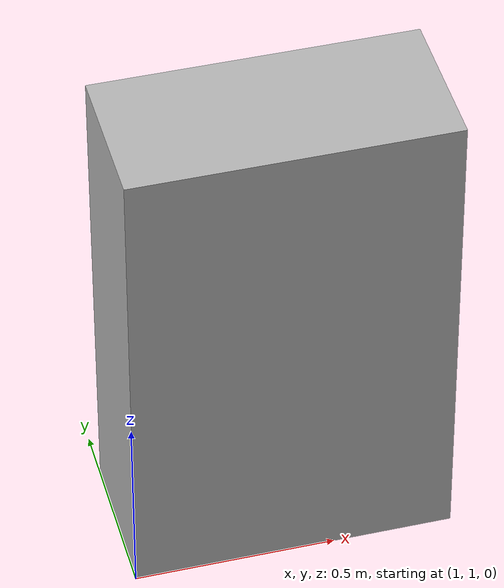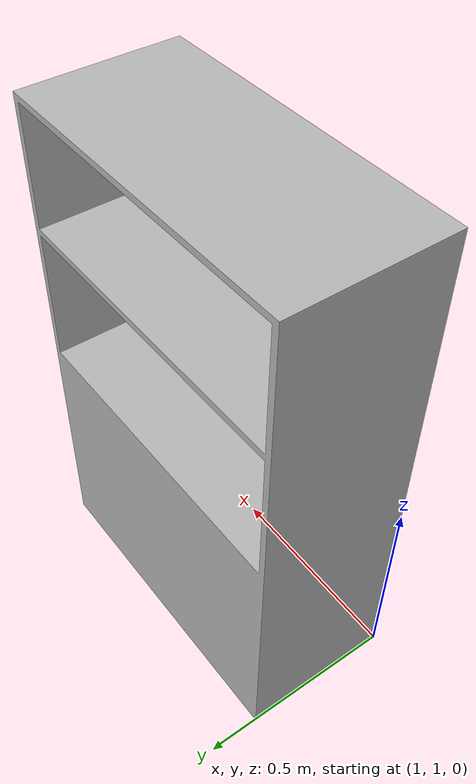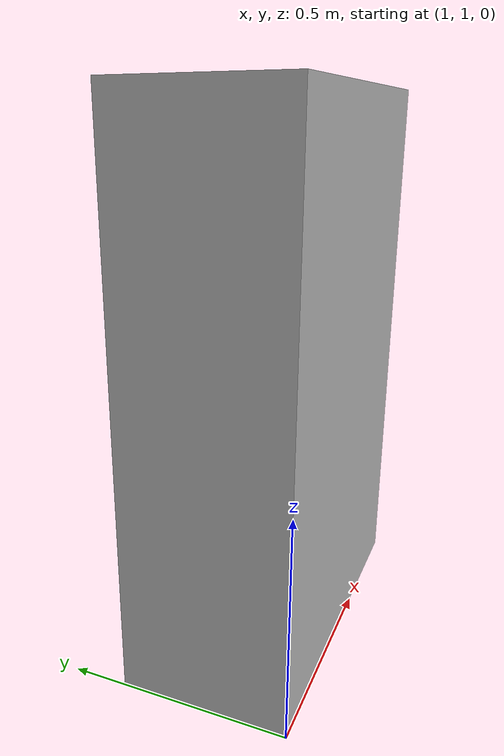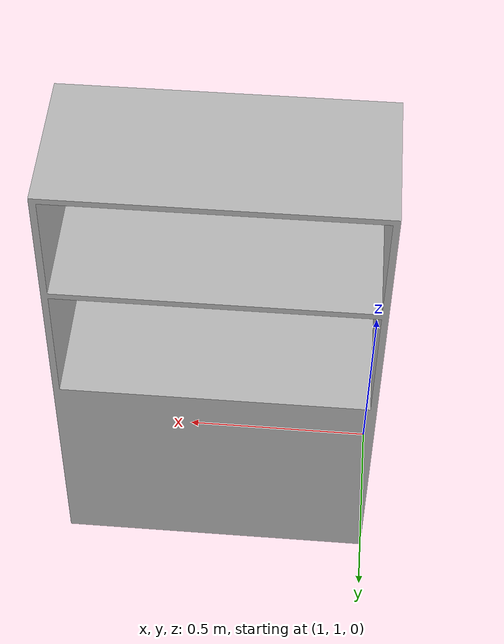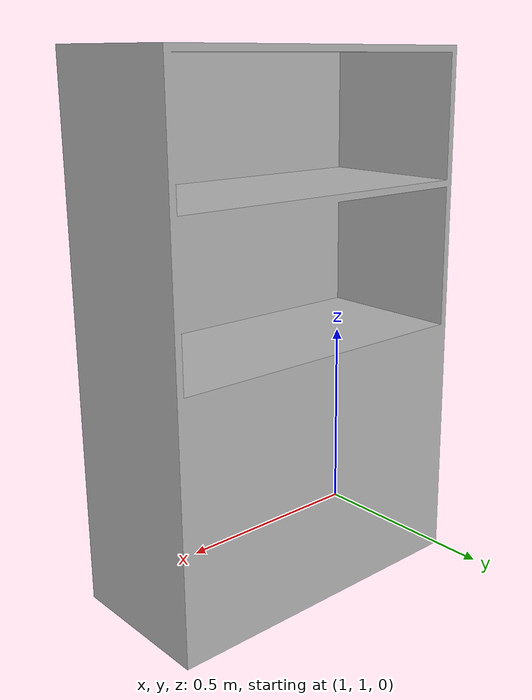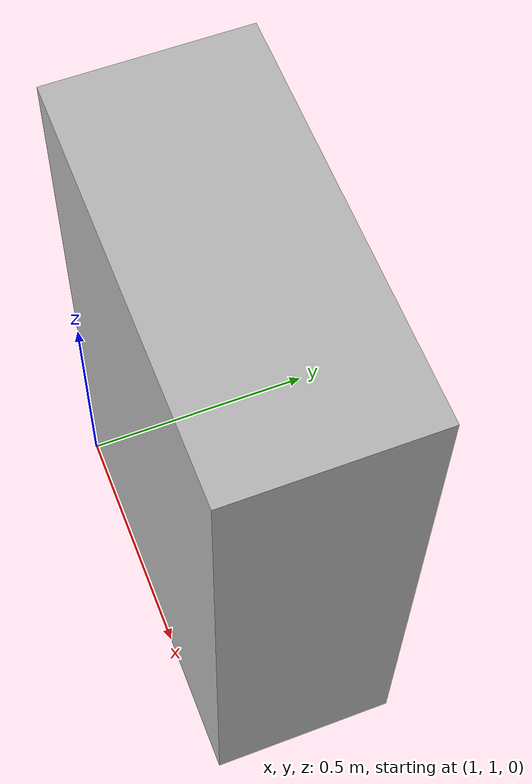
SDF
<?xml version='1.0'?>
<sdf version="1.4">
    <model name="shelf">
      <pose>1 1 0 0 0 0</pose>
      <static>true</static>
      <link name="body">
        <collision name="collision">
         <geometry>
            <mesh> <uri>model://shelf/shelf.stl</uri> </mesh>
         </geometry>
        </collision>
        <visual name="visual">
         <geometry>
            <mesh> <uri>model://shelf/shelf.stl</uri> </mesh>
         </geometry>
          <material>Gazebo/Grey</material>
        </visual>
      </link>
    </model>
</sdf>
